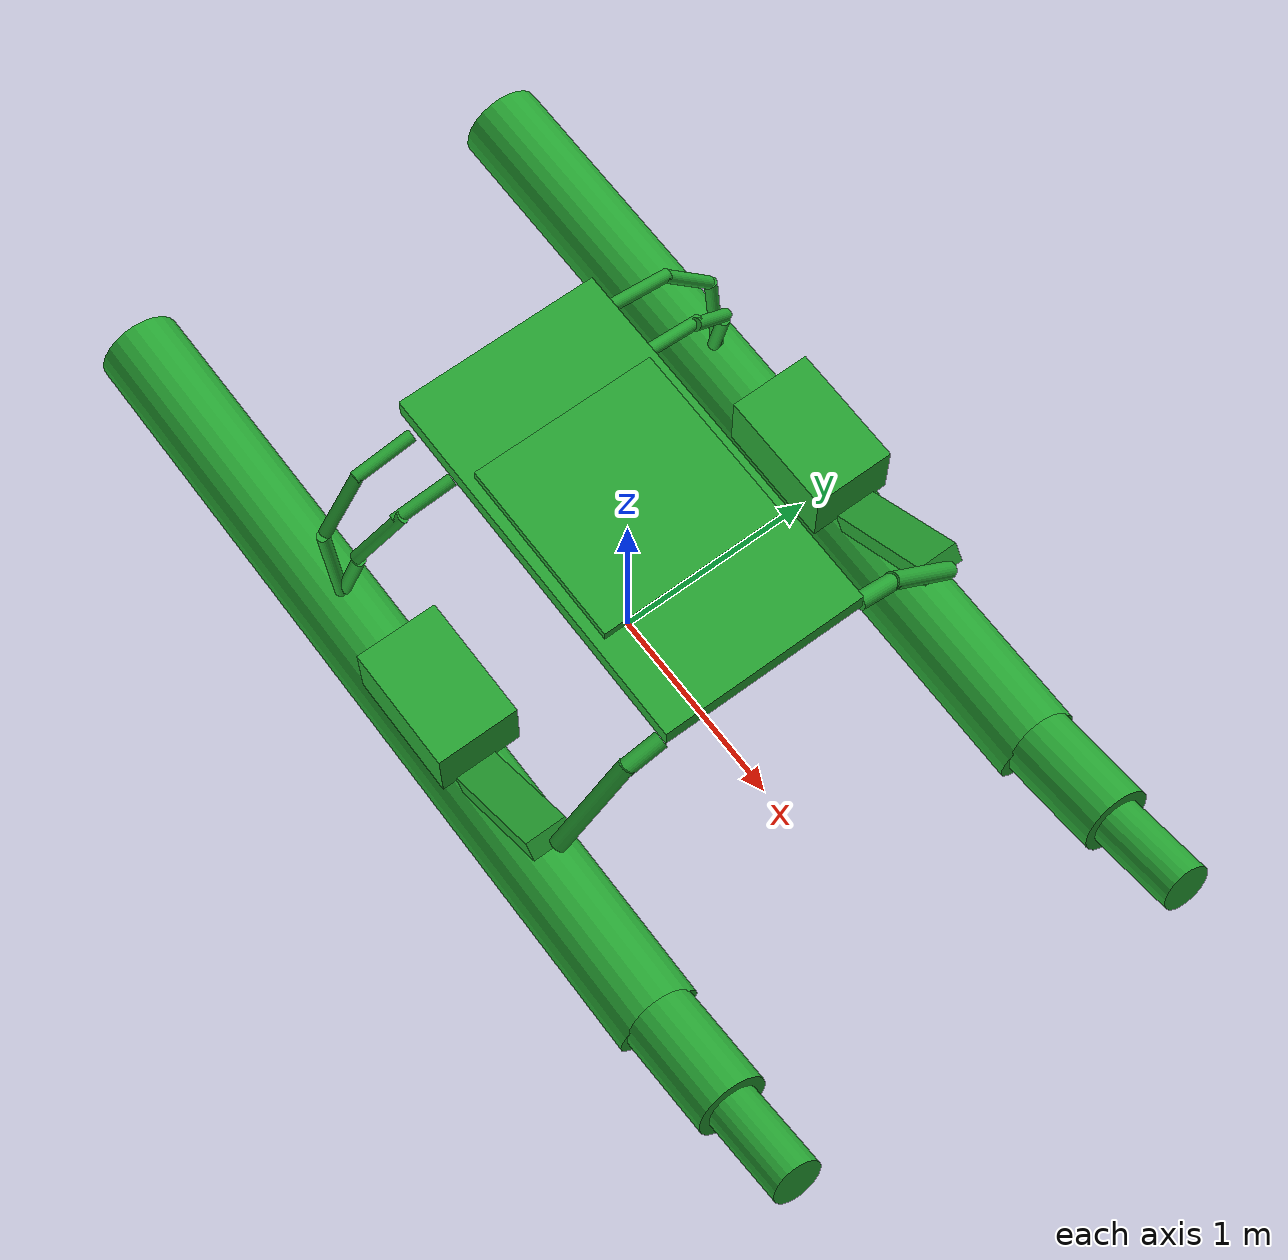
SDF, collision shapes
<sdf version='1.6'>
  <model name='boat_beacon'>
    <link name='base_link'>
      <pose>0 0 0 0 -0 0</pose>
      <inertial>
        <pose >0 0 0.124229 0 -0 0</pose>
        <mass>227</mass>
        <inertia>
          <ixx>181.42</ixx>
          <ixy>0</ixy>
          <ixz>0</ixz>
          <iyy>408.203</iyy>
          <iyz>0</iyz>
          <izz>495.037</izz>
        </inertia>
      </inertial>
      <collision name='base_link_fixed_joint_lump__left_float_collision'>
        <pose >-0.4 1.03 0.2 3.14159 1.57079 3.14159</pose>
        <geometry>
          <cylinder>
            <length>4</length>
            <radius>0.2</radius>
          </cylinder>
        </geometry>
      </collision>
      <collision name='base_link_fixed_joint_lump__left_mid_float_collision_1'>
        <pose>1.85 1.03 0.3 0 1.38 0</pose>
        <geometry>
          <cylinder>
            <length>0.5</length>
            <radius>0.17</radius>
          </cylinder>
        </geometry>
      </collision>
      <collision name='base_link_fixed_joint_lump__left_front_float_collision_2'>
        <pose>2.3 1.03 0.4 0 1.3 0</pose>
        <geometry>
          <cylinder>
            <length>0.45</length>
            <radius>0.12</radius>
          </cylinder>
        </geometry>
      </collision>
      <collision name='base_link_fixed_joint_lump__front_left_beam_lower_collision_3'>
        <pose>0.9 0.85 1 0.78 -0 0</pose>
        <geometry>
          <cylinder>
            <length>0.5</length>
            <radius>0.04</radius>
          </cylinder>
        </geometry>
      </collision>
      <collision name='base_link_fixed_joint_lump__front_left_beam_upper_collision_4'>
        <pose>0.9 0.6 1.18 1.35 -0 0</pose>
        <geometry>
          <cylinder>
            <length>0.2</length>
            <radius>0.04</radius>
          </cylinder>
        </geometry>
      </collision>
      <collision name='base_link_fixed_joint_lump__mid_left_beam_lower_collision_5'>
        <pose>-0.65 0.99 0.7 0.1 0.25 0</pose>
        <geometry>
          <cylinder>
            <length>0.45</length>
            <radius>0.03</radius>
          </cylinder>
        </geometry>
      </collision>
      <collision name='base_link_fixed_joint_lump__mid_left_beam_medium_collision_6'>
        <pose>-0.57 0.87 1.05 0.75 0.25 0</pose>
        <geometry>
          <cylinder>
            <length>0.32</length>
            <radius>0.03</radius>
          </cylinder>
        </geometry>
      </collision>
      <collision name='base_link_fixed_joint_lump__mid_left_beam_upper_collision_7'>
        <pose>-0.55 0.65 1.17 1.35 0.25 0</pose>
        <geometry>
          <cylinder>
            <length>0.3</length>
            <radius>0.03</radius>
          </cylinder>
        </geometry>
      </collision>
      <collision name='base_link_fixed_joint_lump__rear_left_beam_lower_collision_8'>
        <pose>-0.74 1.03 0.7 0 -0.15 0</pose>
        <geometry>
          <cylinder>
            <length>0.45</length>
            <radius>0.03</radius>
          </cylinder>
        </geometry>
      </collision>
      <collision name='base_link_fixed_joint_lump__rear_left_beam_medium_collision_9'>
        <pose>-0.79 0.91 1.05 0.75 -0.15 -0</pose>
        <geometry>
          <cylinder>
            <length>0.32</length>
            <radius>0.03</radius>
          </cylinder>
        </geometry>
      </collision>
      <collision name='base_link_fixed_joint_lump__rear_left_beam_upper_collision_10'>
        <pose>-0.81 0.67 1.18 1.45 -0.15 0</pose>
        <geometry>
          <cylinder>
            <length>0.3</length>
            <radius>0.03</radius>
          </cylinder>
        </geometry>
      </collision>
      <collision name='base_link_fixed_joint_lump__left_joint_collision_11'>
        <pose>0.58 1.03 0.6 0 -0.6 0</pose>
        <geometry>
          <box>
            <size>0.65 0.2 0.1</size>
          </box>
        </geometry>
      </collision>
      <collision name='base_link_fixed_joint_lump__right_float_collision_12'>
        <pose>-0.4 -1.03 0.2 3.14159 1.57079 3.14159</pose>
        <geometry>
          <cylinder>
            <length>4</length>
            <radius>0.2</radius>
          </cylinder>
        </geometry>
      </collision>
      <collision name='base_link_fixed_joint_lump__right_mid_float_collision_13'>
        <pose>1.85 -1.03 0.3 0 1.38 0</pose>
        <geometry>
          <cylinder>
            <length>0.5</length>
            <radius>0.17</radius>
          </cylinder>
        </geometry>
      </collision>
      <collision name='base_link_fixed_joint_lump__right_front_float_collision_14'>
        <pose>2.3 -1.03 0.4 0 1.3 0</pose>
        <geometry>
          <cylinder>
            <length>0.45</length>
            <radius>0.12</radius>
          </cylinder>
        </geometry>
      </collision>
      <collision name='base_link_fixed_joint_lump__front_right_beam_lower_collision_15'>
        <pose>0.9 -0.85 1 -0.78 0 0</pose>
        <geometry>
          <cylinder>
            <length>0.5</length>
            <radius>0.04</radius>
          </cylinder>
        </geometry>
      </collision>
      <collision name='base_link_fixed_joint_lump__front_right_beam_upper_collision_16'>
        <pose>0.9 -0.6 1.18 -1.35 0 0</pose>
        <geometry>
          <cylinder>
            <length>0.2</length>
            <radius>0.04</radius>
          </cylinder>
        </geometry>
      </collision>
      <collision name='base_link_fixed_joint_lump__mid_right_beam_lower_collision_17'>
        <pose>-0.65 -0.99 0.7 -0.1 0.25 0</pose>
        <geometry>
          <cylinder>
            <length>0.45</length>
            <radius>0.03</radius>
          </cylinder>
        </geometry>
      </collision>
      <collision name='base_link_fixed_joint_lump__mid_right_beam_medium_collision_18'>
        <pose>-0.57 -0.87 1.05 -0.75 0.25 0</pose>
        <geometry>
          <cylinder>
            <length>0.32</length>
            <radius>0.03</radius>
          </cylinder>
        </geometry>
      </collision>
      <collision name='base_link_fixed_joint_lump__mid_right_beam_upper_collision_19'>
        <pose>-0.55 -0.65 1.17 -1.35 0.25 0</pose>
        <geometry>
          <cylinder>
            <length>0.3</length>
            <radius>0.03</radius>
          </cylinder>
        </geometry>
      </collision>
      <collision name='base_link_fixed_joint_lump__rear_right_beam_lower_collision_20'>
        <pose>-0.74 -1.03 0.7 0 -0.15 0</pose>
        <geometry>
          <cylinder>
            <length>0.45</length>
            <radius>0.03</radius>
          </cylinder>
        </geometry>
      </collision>
      <collision name='base_link_fixed_joint_lump__rear_right_beam_medium_collision_21'>
        <pose>-0.79 -0.91 1.05 -0.75 -0.15 0</pose>
        <geometry>
          <cylinder>
            <length>0.32</length>
            <radius>0.03</radius>
          </cylinder>
        </geometry>
      </collision>
      <collision name='base_link_fixed_joint_lump__rear_right_beam_upper_collision_22'>
        <pose>-0.81 -0.67 1.18 -1.45 -0.15 0</pose>
        <geometry>
          <cylinder>
            <length>0.3</length>
            <radius>0.03</radius>
          </cylinder>
        </geometry>
      </collision>
      <collision name='base_link_fixed_joint_lump__right_joint_collision_23'>
        <pose>0.58 -1.03 0.6 0 -0.6 0</pose>
        <geometry>
          <box>
            <size>0.65 0.2 0.1</size>
          </box>
        </geometry>
      </collision>
      <collision name='base_link_fixed_joint_lump__top_base_collision_24'>
        <pose>0 0 1.25 0 -0 0</pose>
        <geometry>
          <box>
            <size>1.85 1 0.1</size>
          </box>
        </geometry>
      </collision>
      <collision name='base_link_fixed_joint_lump__left_battery_collision_collision_25'>
        <pose>0 1 0.6 0 -0 0</pose>
        <geometry>
          <box>
            <size>0.6 0.4 0.31</size>
          </box>
        </geometry>
      </collision>
      <collision name='base_link_fixed_joint_lump__right_battery_collision_collision_26'>
        <pose>0 -1 0.6 0 -0 0</pose>
        <geometry>
          <box>
            <size>0.6 0.4 0.31</size>
          </box>
        </geometry>
      </collision>
      <visual name='base_link_fixed_joint_lump__dummy_link_visual'>
        <pose>0 0 0 0 -0 0</pose>
        <geometry>
          <mesh>
            <scale>1 1 1</scale>
            <uri>model://boat_beacon/meshes/body.dae</uri>
          </mesh>
        </geometry>
      </visual>
      <visual name='base_link_fixed_joint_lump__left_battery_visual_visual_1'>
        <pose>0 -0.03 0 0 -0 0</pose>
        <geometry>
          <mesh>
            <scale>1 1 1</scale>
            <uri>model://boat_beacon/meshes/battery.dae</uri>
          </mesh>
        </geometry>

      </visual>
      <visual name='base_link_fixed_joint_lump__right_battery_visual_visual_2'>
        <pose>0 -2.03 0 0 -0 0</pose>
        <geometry>
          <mesh>
            <scale>1 1 1</scale>
            <uri>model://boat_beacon/meshes/battery.dae</uri>
          </mesh>
        </geometry>

      </visual>
      <visual name='right_engine_link_visual'>
        <pose>-2.37378 -1.02713 0.318237 0 -0 0</pose>
        <geometry>
          <mesh>
            <scale>1 1 1</scale>
            <uri>model://boat_beacon/meshes/engine.dae</uri>
          </mesh>
        </geometry>
      </visual>
      <visual name='left_engine_link_visual'>
        <pose>-2.37378 1.02713 0.318237 0 -0 0</pose>
        <geometry>
          <mesh>
            <scale>1 1 1</scale>
            <uri>model://boat_beacon/meshes/engine.dae</uri>
          </mesh>
        </geometry>
      </visual>

      <collision name='plate_collision'>
        <pose>0 0 1.3 0 0 0</pose>
        <geometry>
          <box>
            <size>0.9 0.9 0.1</size>
          </box>
        </geometry>
        <surface>
          <friction>
            <ode>
              <mu>1.0</mu>   <!-- Friction coefficient (higher value, less movement) -->
              <mu2>1.0</mu2> <!-- Second friction coefficient -->
            </ode>
          </friction>
          <bounce>
            <restitution_coefficient>0.0</restitution_coefficient> <!-- Restitution coefficient (0 for no bouncing) -->
            <threshold>0.0</threshold> <!-- Threshold for considering collision -->
          </bounce>
          <contact>
            <ode>
              <soft_cfm>0.01</soft_cfm> <!-- Soft constraint force mixing (smoother contacts) -->
              <soft_erp>0.8</soft_erp>   <!-- Soft error reduction parameter -->
              <kp>10000.0</kp>           <!-- Contact stiffness (higher value, less movement) -->
              <kd>1.0</kd>               <!-- Contact damping -->
            </ode>
          </contact>
        </surface>
      </collision>
      <visual name='plate_visual'>
	<pose>0 0 1.3 0 0 0</pose>
        <geometry>
          <box>
            <size>0.9 0.9 0.1</size>
          </box>
        </geometry>
	<material>
          <script>
            <uri>file://media/materials/scripts/gazebo.material</uri>
            <name>Gazebo/Green</name>
          </script>
        </material>
      </visual>
    </link>

    <link name="left_engine_link">
      <pose>-2.37 1.03 -0.32 0 0 1.57079</pose>
      <inertial>
        <mass>15.0</mass>
        <inertia>
          <ixx>0.4</ixx>
          <ixy>0.0</ixy>
          <ixz>0.0</ixz>
          <iyy>0.25</iyy>
          <iyz>0.0</iyz>
          <izz>0.25</izz>
        </inertia>
      </inertial>
    </link>

    <link name="left_propeller_link">
      <pose>-2.45 1.03 -0.4 0 0 1.57079</pose>

      <inertial>
        <mass>0.5</mass>
        <inertia>
          <ixx>0.00208</ixx>
          <ixy>0.0</ixy>
          <ixz>0.0</ixz>
          <iyy>0.00333</iyy>
          <iyz>0.0</iyz>
          <izz>0.00208</izz>
        </inertia>
      </inertial>
    </link>

    <joint name="left_engine_joint" type="fixed">
      <parent>base_link</parent>
      <child>left_engine_link</child>
    </joint>

    <joint name="left_engine_propeller_joint" type="revolute">
      <axis>
        <xyz>0 -1 0</xyz>
        <limit>
          <effort>100</effort>
          <velocity>100</velocity>
        </limit>
        <dynamics>
          <friction>0.05</friction>
          <damping>0.05</damping>
        </dynamics>
      </axis>
      <parent>left_engine_link</parent>
      <child>left_propeller_link</child>
    </joint>

    <link name="right_engine_link">
      <pose>-2.37 -1.03 -0.32 0 0 1.57079</pose>
      <inertial>
        <mass>15.0</mass>
        <inertia>
          <ixx>0.4</ixx>
          <ixy>0.0</ixy>
          <ixz>0.0</ixz>
          <iyy>0.25</iyy>
          <iyz>0.0</iyz>
          <izz>0.25</izz>
        </inertia>
      </inertial>
    </link>

    <link name="right_propeller_link">
      <pose>-2.45 -1.03 -0.4 0 0 1.57079</pose>

      <inertial>
        <mass>0.5</mass>
        <inertia>
          <ixx>0.00208</ixx>
          <ixy>0.0</ixy>
          <ixz>0.0</ixz>
          <iyy>0.00333</iyy>
          <iyz>0.0</iyz>
          <izz>0.00208</izz>
        </inertia>
      </inertial>
    </link>

    <joint name="right_engine_joint" type="fixed">
      <parent>base_link</parent>
      <child>right_engine_link</child>
    </joint>

    <joint name="right_engine_propeller_joint" type="revolute">
      <axis>
        <xyz>0 -1 0</xyz>
        <limit>
          <effort>100</effort>
          <velocity>100</velocity>
        </limit>
        <dynamics>
          <friction>0.05</friction>
          <damping>0.05</damping>
        </dynamics>
      </axis>
      <parent>right_engine_link</parent>
      <child>right_propeller_link</child>
    </joint>

    <plugin
      filename="libSurface.so"
      name="maritime::Surface">
      <link_name>base_link</link_name>
      <hull_length>8</hull_length>
      <hull_radius>1</hull_radius>
      <fluid_level>0</fluid_level>
      <points>
        <point>4 -2 0.2</point>
        <point>-4 -2 0.2</point>
        <point>4 2 0.2</point>
        <point>-4 2 0.2</point>
      </points>
      <wavefield>
        <topic>/gazebo/wavefield/parameters</topic>
      </wavefield>
    </plugin>

    <plugin
      filename="gz-sim-hydrodynamics-system"
      name="gz::sim::systems::Hydrodynamics">
      <link_name>base_link</link_name>
      <xDotU>0.0</xDotU>
      <yDotV>0.0</yDotV>
      <nDotR>0.0</nDotR>
      <xU>-510.3</xU>
      <xAbsU>-720.4</xAbsU>
      <yV>-400.0</yV>
      <yAbsV>0.0</yAbsV>
      <zW>-5000.0</zW>
      <kP>-500.0</kP>
      <mQ>-500.0</mQ>
      <nR>-4000.0</nR>
      <nAbsR>0.0</nAbsR>
    </plugin>

    <plugin
      filename="gz-sim-thruster-system"
      name="gz::sim::systems::Thruster">
      <joint_name>left_engine_propeller_joint</joint_name>
      <thrust_coefficient>0.004422</thrust_coefficient>
      <fluid_density>1000</fluid_density>
      <propeller_diameter>0.2</propeller_diameter>
      <velocity_control>true</velocity_control>
    </plugin>

    <plugin
      filename="gz-sim-thruster-system"
      name="gz::sim::systems::Thruster">
      <joint_name>right_engine_propeller_joint</joint_name>
      <thrust_coefficient>0.004422</thrust_coefficient>
      <fluid_density>1000</fluid_density>
      <propeller_diameter>0.2</propeller_diameter>
      <velocity_control>true</velocity_control>
    </plugin>

    <plugin filename="ignition-gazebo-pose-publisher-system"
      name="ignition::gazebo::systems::PosePublisher">
      <publish_link_pose>false</publish_link_pose>
      <publish_collision_pose>false</publish_collision_pose>
      <publish_visual_pose>false</publish_visual_pose>
      <publish_nested_model_pose>true</publish_nested_model_pose>
      <publish_model_pose>true</publish_model_pose>
      <use_pose_vector_msg>true</use_pose_vector_msg>
      <static_publisher>false</static_publisher>
      <update_frequency>100</update_frequency>
    </plugin>

  </model>
</sdf>
